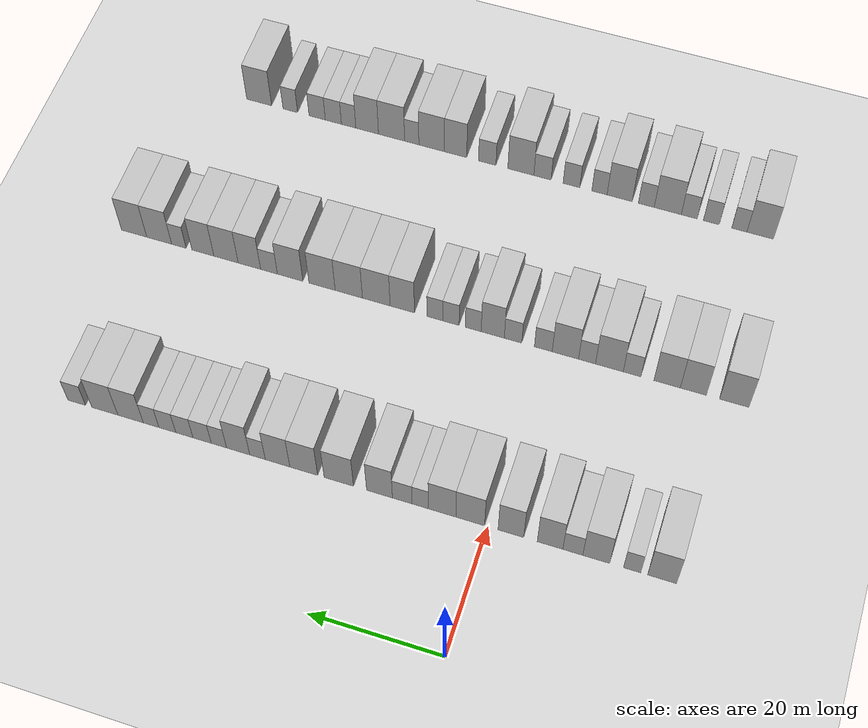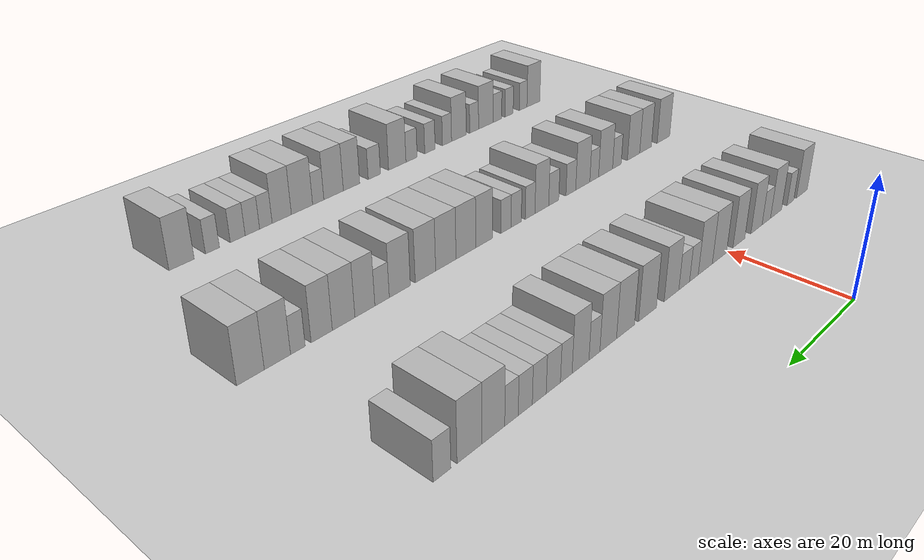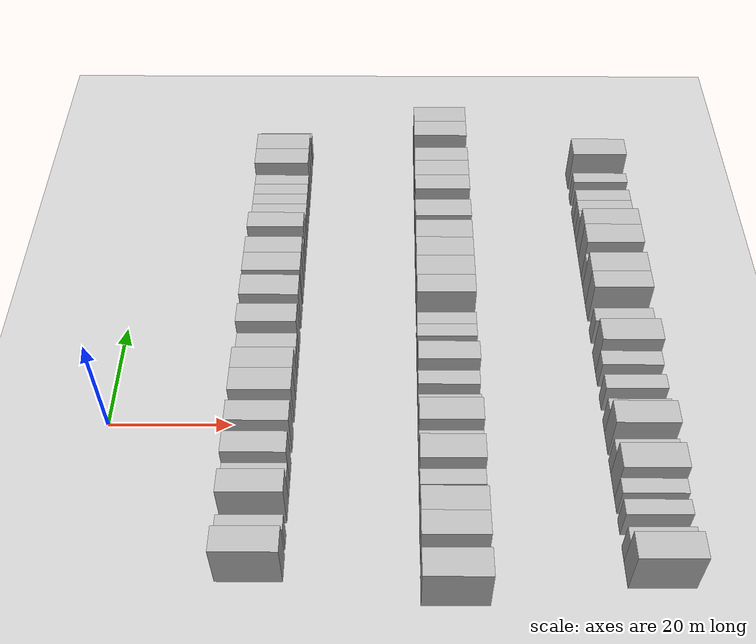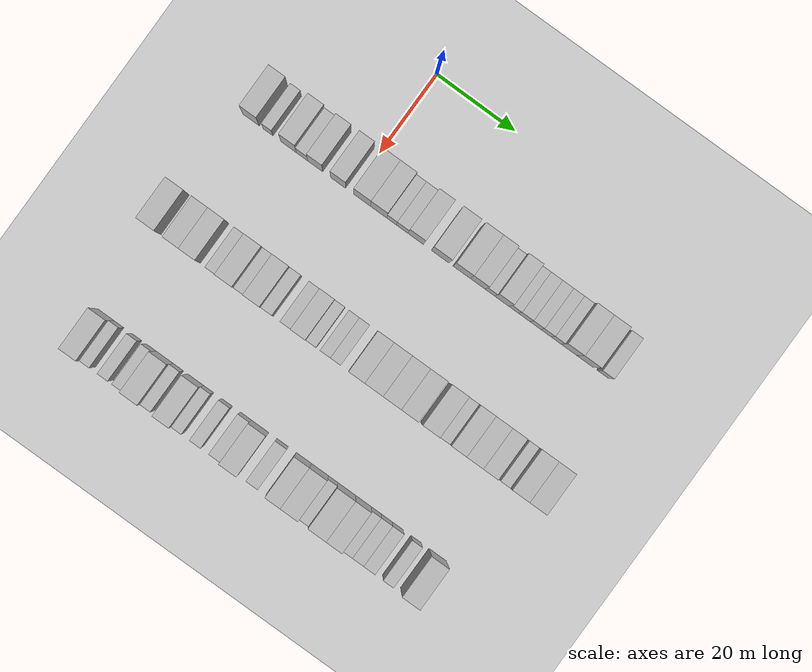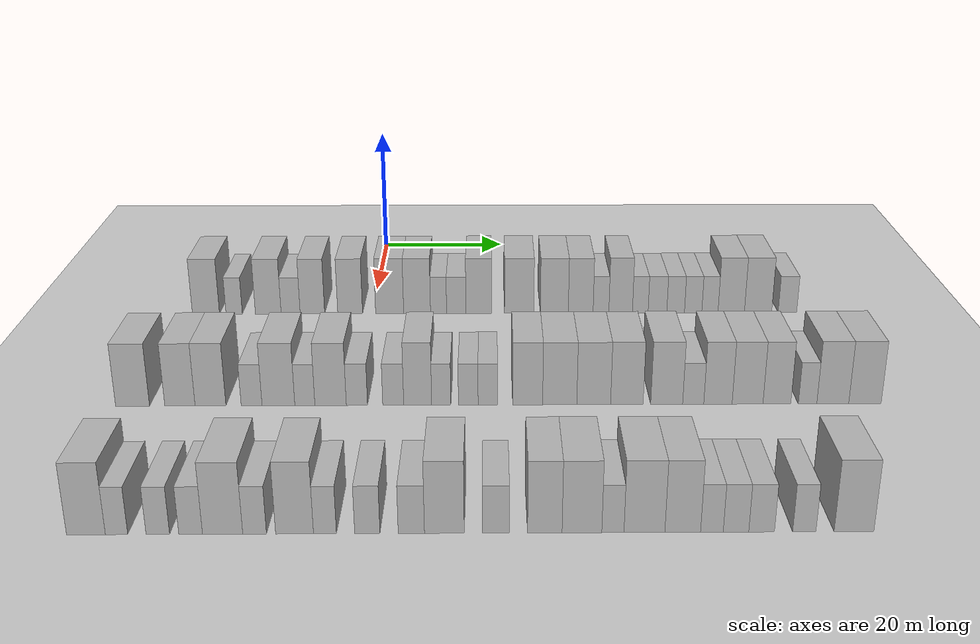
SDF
<sdf version="1.6">
 <world name="default">
  <include><name>ground_plane_1</name><uri>model://HANNAS_ground_plane</uri></include>
  <model name="building_98">
   <static>1</static>
   <pose>25.0000 -25.4486 0 0.000000 0.000000 0.000000</pose>
   <link name="link">
    <pose>0 0 4.50 0 0 0</pose>
    <collision name="collision"><geometry><box><size>10.0000 4.1456 9.0000</size></box></geometry></collision>
    <visual name="visual">
     <cast_shadows>0</cast_shadows>
     <geometry><box><size>10.0000 4.1456 9.0000</size></box></geometry>
     <material>
      <script>
       <uri>model://HANNAS_wall/materials/scripts</uri>
       <uri>model://HANNAS_wall/materials/textures</uri>
       <name>vrc/HANNAS_wall</name>
      </script>
     </material>
    </visual>
   </link>
  </model>
  <model name="building_99">
   <static>1</static>
   <pose>25.0000 -21.1285 0 0.000000 0.000000 0.000000</pose>
   <link name="link">
    <pose>0 0 3.00 0 0 0</pose>
    <collision name="collision"><geometry><box><size>10.0000 2.4947 6.0000</size></box></geometry></collision>
    <visual name="visual">
     <cast_shadows>0</cast_shadows>
     <geometry><box><size>10.0000 2.4947 6.0000</size></box></geometry>
     <material>
      <script>
       <uri>model://HANNAS_wall/materials/scripts</uri>
       <uri>model://HANNAS_wall/materials/textures</uri>
       <name>vrc/HANNAS_wall</name>
      </script>
     </material>
    </visual>
   </link>
  </model>
  <model name="building_100">
   <static>1</static>
   <pose>25.0000 -15.9112 0 0.000000 0.000000 0.000000</pose>
   <link name="link">
    <pose>0 0 4.50 0 0 0</pose>
    <collision name="collision"><geometry><box><size>10.0000 3.9399 9.0000</size></box></geometry></collision>
    <visual name="visual">
     <cast_shadows>0</cast_shadows>
     <geometry><box><size>10.0000 3.9399 9.0000</size></box></geometry>
     <material>
      <script>
       <uri>model://HANNAS_wall/materials/scripts</uri>
       <uri>model://HANNAS_wall/materials/textures</uri>
       <name>vrc/HANNAS_wall</name>
      </script>
     </material>
    </visual>
   </link>
  </model>
  <model name="building_101">
   <static>1</static>
   <pose>25.0000 -12.4846 0 0.000000 0.000000 0.000000</pose>
   <link name="link">
    <pose>0 0 3.00 0 0 0</pose>
    <collision name="collision"><geometry><box><size>10.0000 2.9132 6.0000</size></box></geometry></collision>
    <visual name="visual">
     <cast_shadows>0</cast_shadows>
     <geometry><box><size>10.0000 2.9132 6.0000</size></box></geometry>
     <material>
      <script>
       <uri>model://HANNAS_wall/materials/scripts</uri>
       <uri>model://HANNAS_wall/materials/textures</uri>
       <name>vrc/HANNAS_wall</name>
      </script>
     </material>
    </visual>
   </link>
  </model>
  <model name="building_102">
   <static>1</static>
   <pose>25.0000 -9.1486 0 0.000000 0.000000 0.000000</pose>
   <link name="link">
    <pose>0 0 4.50 0 0 0</pose>
    <collision name="collision"><geometry><box><size>10.0000 3.7589 9.0000</size></box></geometry></collision>
    <visual name="visual">
     <cast_shadows>0</cast_shadows>
     <geometry><box><size>10.0000 3.7589 9.0000</size></box></geometry>
     <material>
      <script>
       <uri>model://HANNAS_wall/materials/scripts</uri>
       <uri>model://HANNAS_wall/materials/textures</uri>
       <name>vrc/HANNAS_wall</name>
      </script>
     </material>
    </visual>
   </link>
  </model>
  <model name="building_103">
   <static>1</static>
   <pose>25.0000 -3.3682 0 0.000000 0.000000 0.000000</pose>
   <link name="link">
    <pose>0 0 4.50 0 0 0</pose>
    <collision name="collision"><geometry><box><size>10.0000 3.8019 9.0000</size></box></geometry></collision>
    <visual name="visual">
     <cast_shadows>0</cast_shadows>
     <geometry><box><size>10.0000 3.8019 9.0000</size></box></geometry>
     <material>
      <script>
       <uri>model://HANNAS_wall/materials/scripts</uri>
       <uri>model://HANNAS_wall/materials/textures</uri>
       <name>vrc/HANNAS_wall</name>
      </script>
     </material>
    </visual>
   </link>
  </model>
  <model name="building_104">
   <static>1</static>
   <pose>25.0000 2.6820 0 0.000000 0.000000 0.000000</pose>
   <link name="link">
    <pose>0 0 4.50 0 0 0</pose>
    <collision name="collision"><geometry><box><size>10.0000 4.2985 9.0000</size></box></geometry></collision>
    <visual name="visual">
     <cast_shadows>0</cast_shadows>
     <geometry><box><size>10.0000 4.2985 9.0000</size></box></geometry>
     <material>
      <script>
       <uri>model://HANNAS_wall/materials/scripts</uri>
       <uri>model://HANNAS_wall/materials/textures</uri>
       <name>vrc/HANNAS_wall</name>
      </script>
     </material>
    </visual>
   </link>
  </model>
  <model name="building_105">
   <static>1</static>
   <pose>25.0000 6.8907 0 0.000000 0.000000 0.000000</pose>
   <link name="link">
    <pose>0 0 4.50 0 0 0</pose>
    <collision name="collision"><geometry><box><size>10.0000 4.1188 9.0000</size></box></geometry></collision>
    <visual name="visual">
     <cast_shadows>0</cast_shadows>
     <geometry><box><size>10.0000 4.1188 9.0000</size></box></geometry>
     <material>
      <script>
       <uri>model://HANNAS_wall/materials/scripts</uri>
       <uri>model://HANNAS_wall/materials/textures</uri>
       <name>vrc/HANNAS_wall</name>
      </script>
     </material>
    </visual>
   </link>
  </model>
  <model name="building_106">
   <static>1</static>
   <pose>25.0000 10.1801 0 0.000000 0.000000 0.000000</pose>
   <link name="link">
    <pose>0 0 3.00 0 0 0</pose>
    <collision name="collision"><geometry><box><size>10.0000 2.4600 6.0000</size></box></geometry></collision>
    <visual name="visual">
     <cast_shadows>0</cast_shadows>
     <geometry><box><size>10.0000 2.4600 6.0000</size></box></geometry>
     <material>
      <script>
       <uri>model://HANNAS_wall/materials/scripts</uri>
       <uri>model://HANNAS_wall/materials/textures</uri>
       <name>vrc/HANNAS_wall</name>
      </script>
     </material>
    </visual>
   </link>
  </model>
  <model name="building_107">
   <static>1</static>
   <pose>25.0000 12.8931 0 0.000000 0.000000 0.000000</pose>
   <link name="link">
    <pose>0 0 3.00 0 0 0</pose>
    <collision name="collision"><geometry><box><size>10.0000 2.9661 6.0000</size></box></geometry></collision>
    <visual name="visual">
     <cast_shadows>0</cast_shadows>
     <geometry><box><size>10.0000 2.9661 6.0000</size></box></geometry>
     <material>
      <script>
       <uri>model://HANNAS_wall/materials/scripts</uri>
       <uri>model://HANNAS_wall/materials/textures</uri>
       <name>vrc/HANNAS_wall</name>
      </script>
     </material>
    </visual>
   </link>
  </model>
  <model name="building_108">
   <static>1</static>
   <pose>25.0000 16.3398 0 0.000000 0.000000 0.000000</pose>
   <link name="link">
    <pose>0 0 4.50 0 0 0</pose>
    <collision name="collision"><geometry><box><size>10.0000 3.9273 9.0000</size></box></geometry></collision>
    <visual name="visual">
     <cast_shadows>0</cast_shadows>
     <geometry><box><size>10.0000 3.9273 9.0000</size></box></geometry>
     <material>
      <script>
       <uri>model://HANNAS_wall/materials/scripts</uri>
       <uri>model://HANNAS_wall/materials/textures</uri>
       <name>vrc/HANNAS_wall</name>
      </script>
     </material>
    </visual>
   </link>
  </model>
  <model name="building_109">
   <static>1</static>
   <pose>25.0000 22.5527 0 0.000000 0.000000 0.000000</pose>
   <link name="link">
    <pose>0 0 4.50 0 0 0</pose>
    <collision name="collision"><geometry><box><size>10.0000 4.4985 9.0000</size></box></geometry></collision>
    <visual name="visual">
     <cast_shadows>0</cast_shadows>
     <geometry><box><size>10.0000 4.4985 9.0000</size></box></geometry>
     <material>
      <script>
       <uri>model://HANNAS_wall/materials/scripts</uri>
       <uri>model://HANNAS_wall/materials/textures</uri>
       <name>vrc/HANNAS_wall</name>
      </script>
     </material>
    </visual>
   </link>
  </model>
  <model name="building_110">
   <static>1</static>
   <pose>25.0000 27.9456 0 0.000000 0.000000 0.000000</pose>
   <link name="link">
    <pose>0 0 4.50 0 0 0</pose>
    <collision name="collision"><geometry><box><size>10.0000 4.2873 9.0000</size></box></geometry></collision>
    <visual name="visual">
     <cast_shadows>0</cast_shadows>
     <geometry><box><size>10.0000 4.2873 9.0000</size></box></geometry>
     <material>
      <script>
       <uri>model://HANNAS_wall/materials/scripts</uri>
       <uri>model://HANNAS_wall/materials/textures</uri>
       <name>vrc/HANNAS_wall</name>
      </script>
     </material>
    </visual>
   </link>
  </model>
  <model name="building_111">
   <static>1</static>
   <pose>25.0000 31.9948 0 0.000000 0.000000 0.000000</pose>
   <link name="link">
    <pose>0 0 4.50 0 0 0</pose>
    <collision name="collision"><geometry><box><size>10.0000 3.8110 9.0000</size></box></geometry></collision>
    <visual name="visual">
     <cast_shadows>0</cast_shadows>
     <geometry><box><size>10.0000 3.8110 9.0000</size></box></geometry>
     <material>
      <script>
       <uri>model://HANNAS_wall/materials/scripts</uri>
       <uri>model://HANNAS_wall/materials/textures</uri>
       <name>vrc/HANNAS_wall</name>
      </script>
     </material>
    </visual>
   </link>
  </model>
  <model name="building_112">
   <static>1</static>
   <pose>25.0000 35.1090 0 0.000000 0.000000 0.000000</pose>
   <link name="link">
    <pose>0 0 3.00 0 0 0</pose>
    <collision name="collision"><geometry><box><size>10.0000 2.4174 6.0000</size></box></geometry></collision>
    <visual name="visual">
     <cast_shadows>0</cast_shadows>
     <geometry><box><size>10.0000 2.4174 6.0000</size></box></geometry>
     <material>
      <script>
       <uri>model://HANNAS_wall/materials/scripts</uri>
       <uri>model://HANNAS_wall/materials/textures</uri>
       <name>vrc/HANNAS_wall</name>
      </script>
     </material>
    </visual>
   </link>
  </model>
  <model name="building_113">
   <static>1</static>
   <pose>25.0000 38.1297 0 0.000000 0.000000 0.000000</pose>
   <link name="link">
    <pose>0 0 4.50 0 0 0</pose>
    <collision name="collision"><geometry><box><size>10.0000 3.6241 9.0000</size></box></geometry></collision>
    <visual name="visual">
     <cast_shadows>0</cast_shadows>
     <geometry><box><size>10.0000 3.6241 9.0000</size></box></geometry>
     <material>
      <script>
       <uri>model://HANNAS_wall/materials/scripts</uri>
       <uri>model://HANNAS_wall/materials/textures</uri>
       <name>vrc/HANNAS_wall</name>
      </script>
     </material>
    </visual>
   </link>
  </model>
  <model name="building_114">
   <static>1</static>
   <pose>25.0000 41.1473 0 0.000000 0.000000 0.000000</pose>
   <link name="link">
    <pose>0 0 3.00 0 0 0</pose>
    <collision name="collision"><geometry><box><size>10.0000 2.4110 6.0000</size></box></geometry></collision>
    <visual name="visual">
     <cast_shadows>0</cast_shadows>
     <geometry><box><size>10.0000 2.4110 6.0000</size></box></geometry>
     <material>
      <script>
       <uri>model://HANNAS_wall/materials/scripts</uri>
       <uri>model://HANNAS_wall/materials/textures</uri>
       <name>vrc/HANNAS_wall</name>
      </script>
     </material>
    </visual>
   </link>
  </model>
  <model name="building_115">
   <static>1</static>
   <pose>25.0000 43.7891 0 0.000000 0.000000 0.000000</pose>
   <link name="link">
    <pose>0 0 3.00 0 0 0</pose>
    <collision name="collision"><geometry><box><size>10.0000 2.8726 6.0000</size></box></geometry></collision>
    <visual name="visual">
     <cast_shadows>0</cast_shadows>
     <geometry><box><size>10.0000 2.8726 6.0000</size></box></geometry>
     <material>
      <script>
       <uri>model://HANNAS_wall/materials/scripts</uri>
       <uri>model://HANNAS_wall/materials/textures</uri>
       <name>vrc/HANNAS_wall</name>
      </script>
     </material>
    </visual>
   </link>
  </model>
  <model name="building_116">
   <static>1</static>
   <pose>25.0000 46.5852 0 0.000000 0.000000 0.000000</pose>
   <link name="link">
    <pose>0 0 3.00 0 0 0</pose>
    <collision name="collision"><geometry><box><size>10.0000 2.7195 6.0000</size></box></geometry></collision>
    <visual name="visual">
     <cast_shadows>0</cast_shadows>
     <geometry><box><size>10.0000 2.7195 6.0000</size></box></geometry>
     <material>
      <script>
       <uri>model://HANNAS_wall/materials/scripts</uri>
       <uri>model://HANNAS_wall/materials/textures</uri>
       <name>vrc/HANNAS_wall</name>
      </script>
     </material>
    </visual>
   </link>
  </model>
  <model name="building_117">
   <static>1</static>
   <pose>25.0000 49.2761 0 0.000000 0.000000 0.000000</pose>
   <link name="link">
    <pose>0 0 3.00 0 0 0</pose>
    <collision name="collision"><geometry><box><size>10.0000 2.6624 6.0000</size></box></geometry></collision>
    <visual name="visual">
     <cast_shadows>0</cast_shadows>
     <geometry><box><size>10.0000 2.6624 6.0000</size></box></geometry>
     <material>
      <script>
       <uri>model://HANNAS_wall/materials/scripts</uri>
       <uri>model://HANNAS_wall/materials/textures</uri>
       <name>vrc/HANNAS_wall</name>
      </script>
     </material>
    </visual>
   </link>
  </model>
  <model name="building_118">
   <static>1</static>
   <pose>25.0000 51.8542 0 0.000000 0.000000 0.000000</pose>
   <link name="link">
    <pose>0 0 3.00 0 0 0</pose>
    <collision name="collision"><geometry><box><size>10.0000 2.4939 6.0000</size></box></geometry></collision>
    <visual name="visual">
     <cast_shadows>0</cast_shadows>
     <geometry><box><size>10.0000 2.4939 6.0000</size></box></geometry>
     <material>
      <script>
       <uri>model://HANNAS_wall/materials/scripts</uri>
       <uri>model://HANNAS_wall/materials/textures</uri>
       <name>vrc/HANNAS_wall</name>
      </script>
     </material>
    </visual>
   </link>
  </model>
  <model name="building_119">
   <static>1</static>
   <pose>25.0000 55.1334 0 0.000000 0.000000 0.000000</pose>
   <link name="link">
    <pose>0 0 4.50 0 0 0</pose>
    <collision name="collision"><geometry><box><size>10.0000 4.0644 9.0000</size></box></geometry></collision>
    <visual name="visual">
     <cast_shadows>0</cast_shadows>
     <geometry><box><size>10.0000 4.0644 9.0000</size></box></geometry>
     <material>
      <script>
       <uri>model://HANNAS_wall/materials/scripts</uri>
       <uri>model://HANNAS_wall/materials/textures</uri>
       <name>vrc/HANNAS_wall</name>
      </script>
     </material>
    </visual>
   </link>
  </model>
  <model name="building_120">
   <static>1</static>
   <pose>25.0000 59.2651 0 0.000000 0.000000 0.000000</pose>
   <link name="link">
    <pose>0 0 4.50 0 0 0</pose>
    <collision name="collision"><geometry><box><size>10.0000 4.1990 9.0000</size></box></geometry></collision>
    <visual name="visual">
     <cast_shadows>0</cast_shadows>
     <geometry><box><size>10.0000 4.1990 9.0000</size></box></geometry>
     <material>
      <script>
       <uri>model://HANNAS_wall/materials/scripts</uri>
       <uri>model://HANNAS_wall/materials/textures</uri>
       <name>vrc/HANNAS_wall</name>
      </script>
     </material>
    </visual>
   </link>
  </model>
  <model name="building_121">
   <static>1</static>
   <pose>25.0000 63.7911 0 0.000000 0.000000 0.000000</pose>
   <link name="link">
    <pose>0 0 3.00 0 0 0</pose>
    <collision name="collision"><geometry><box><size>10.0000 2.8531 6.0000</size></box></geometry></collision>
    <visual name="visual">
     <cast_shadows>0</cast_shadows>
     <geometry><box><size>10.0000 2.8531 6.0000</size></box></geometry>
     <material>
      <script>
       <uri>model://HANNAS_wall/materials/scripts</uri>
       <uri>model://HANNAS_wall/materials/textures</uri>
       <name>vrc/HANNAS_wall</name>
      </script>
     </material>
    </visual>
   </link>
  </model>
  <model name="building_329">
   <static>1</static>
   <pose>55.0000 -28.8883 0 0.000000 0.000000 0.000000</pose>
   <link name="link">
    <pose>0 0 4.50 0 0 0</pose>
    <collision name="collision"><geometry><box><size>10.0000 4.4527 9.0000</size></box></geometry></collision>
    <visual name="visual">
     <cast_shadows>0</cast_shadows>
     <geometry><box><size>10.0000 4.4527 9.0000</size></box></geometry>
     <material>
      <script>
       <uri>model://HANNAS_wall/materials/scripts</uri>
       <uri>model://HANNAS_wall/materials/textures</uri>
       <name>vrc/HANNAS_wall</name>
      </script>
     </material>
    </visual>
   </link>
  </model>
  <model name="building_330">
   <static>1</static>
   <pose>55.0000 -22.6788 0 0.000000 0.000000 0.000000</pose>
   <link name="link">
    <pose>0 0 4.50 0 0 0</pose>
    <collision name="collision"><geometry><box><size>10.0000 3.9663 9.0000</size></box></geometry></collision>
    <visual name="visual">
     <cast_shadows>0</cast_shadows>
     <geometry><box><size>10.0000 3.9663 9.0000</size></box></geometry>
     <material>
      <script>
       <uri>model://HANNAS_wall/materials/scripts</uri>
       <uri>model://HANNAS_wall/materials/textures</uri>
       <name>vrc/HANNAS_wall</name>
      </script>
     </material>
    </visual>
   </link>
  </model>
  <model name="building_331">
   <static>1</static>
   <pose>55.0000 -18.6706 0 0.000000 0.000000 0.000000</pose>
   <link name="link">
    <pose>0 0 4.50 0 0 0</pose>
    <collision name="collision"><geometry><box><size>10.0000 4.0502 9.0000</size></box></geometry></collision>
    <visual name="visual">
     <cast_shadows>0</cast_shadows>
     <geometry><box><size>10.0000 4.0502 9.0000</size></box></geometry>
     <material>
      <script>
       <uri>model://HANNAS_wall/materials/scripts</uri>
       <uri>model://HANNAS_wall/materials/textures</uri>
       <name>vrc/HANNAS_wall</name>
      </script>
     </material>
    </visual>
   </link>
  </model>
  <model name="building_332">
   <static>1</static>
   <pose>55.0000 -13.2770 0 0.000000 0.000000 0.000000</pose>
   <link name="link">
    <pose>0 0 3.00 0 0 0</pose>
    <collision name="collision"><geometry><box><size>10.0000 2.7370 6.0000</size></box></geometry></collision>
    <visual name="visual">
     <cast_shadows>0</cast_shadows>
     <geometry><box><size>10.0000 2.7370 6.0000</size></box></geometry>
     <material>
      <script>
       <uri>model://HANNAS_wall/materials/scripts</uri>
       <uri>model://HANNAS_wall/materials/textures</uri>
       <name>vrc/HANNAS_wall</name>
      </script>
     </material>
    </visual>
   </link>
  </model>
  <model name="building_333">
   <static>1</static>
   <pose>55.0000 -9.7554 0 0.000000 0.000000 0.000000</pose>
   <link name="link">
    <pose>0 0 4.50 0 0 0</pose>
    <collision name="collision"><geometry><box><size>10.0000 4.3061 9.0000</size></box></geometry></collision>
    <visual name="visual">
     <cast_shadows>0</cast_shadows>
     <geometry><box><size>10.0000 4.3061 9.0000</size></box></geometry>
     <material>
      <script>
       <uri>model://HANNAS_wall/materials/scripts</uri>
       <uri>model://HANNAS_wall/materials/textures</uri>
       <name>vrc/HANNAS_wall</name>
      </script>
     </material>
    </visual>
   </link>
  </model>
  <model name="building_334">
   <static>1</static>
   <pose>55.0000 -6.2853 0 0.000000 0.000000 0.000000</pose>
   <link name="link">
    <pose>0 0 3.00 0 0 0</pose>
    <collision name="collision"><geometry><box><size>10.0000 2.6341 6.0000</size></box></geometry></collision>
    <visual name="visual">
     <cast_shadows>0</cast_shadows>
     <geometry><box><size>10.0000 2.6341 6.0000</size></box></geometry>
     <material>
      <script>
       <uri>model://HANNAS_wall/materials/scripts</uri>
       <uri>model://HANNAS_wall/materials/textures</uri>
       <name>vrc/HANNAS_wall</name>
      </script>
     </material>
    </visual>
   </link>
  </model>
  <model name="building_335">
   <static>1</static>
   <pose>55.0000 -2.9037 0 0.000000 0.000000 0.000000</pose>
   <link name="link">
    <pose>0 0 4.50 0 0 0</pose>
    <collision name="collision"><geometry><box><size>10.0000 4.1291 9.0000</size></box></geometry></collision>
    <visual name="visual">
     <cast_shadows>0</cast_shadows>
     <geometry><box><size>10.0000 4.1291 9.0000</size></box></geometry>
     <material>
      <script>
       <uri>model://HANNAS_wall/materials/scripts</uri>
       <uri>model://HANNAS_wall/materials/textures</uri>
       <name>vrc/HANNAS_wall</name>
      </script>
     </material>
    </visual>
   </link>
  </model>
  <model name="building_336">
   <static>1</static>
   <pose>55.0000 0.5549 0 0.000000 0.000000 0.000000</pose>
   <link name="link">
    <pose>0 0 3.00 0 0 0</pose>
    <collision name="collision"><geometry><box><size>10.0000 2.7881 6.0000</size></box></geometry></collision>
    <visual name="visual">
     <cast_shadows>0</cast_shadows>
     <geometry><box><size>10.0000 2.7881 6.0000</size></box></geometry>
     <material>
      <script>
       <uri>model://HANNAS_wall/materials/scripts</uri>
       <uri>model://HANNAS_wall/materials/textures</uri>
       <name>vrc/HANNAS_wall</name>
      </script>
     </material>
    </visual>
   </link>
  </model>
  <model name="building_337">
   <static>1</static>
   <pose>55.0000 5.3256 0 0.000000 0.000000 0.000000</pose>
   <link name="link">
    <pose>0 0 3.00 0 0 0</pose>
    <collision name="collision"><geometry><box><size>10.0000 2.7534 6.0000</size></box></geometry></collision>
    <visual name="visual">
     <cast_shadows>0</cast_shadows>
     <geometry><box><size>10.0000 2.7534 6.0000</size></box></geometry>
     <material>
      <script>
       <uri>model://HANNAS_wall/materials/scripts</uri>
       <uri>model://HANNAS_wall/materials/textures</uri>
       <name>vrc/HANNAS_wall</name>
      </script>
     </material>
    </visual>
   </link>
  </model>
  <model name="building_338">
   <static>1</static>
   <pose>55.0000 8.5414 0 0.000000 0.000000 0.000000</pose>
   <link name="link">
    <pose>0 0 4.50 0 0 0</pose>
    <collision name="collision"><geometry><box><size>10.0000 3.6780 9.0000</size></box></geometry></collision>
    <visual name="visual">
     <cast_shadows>0</cast_shadows>
     <geometry><box><size>10.0000 3.6780 9.0000</size></box></geometry>
     <material>
      <script>
       <uri>model://HANNAS_wall/materials/scripts</uri>
       <uri>model://HANNAS_wall/materials/textures</uri>
       <name>vrc/HANNAS_wall</name>
      </script>
     </material>
    </visual>
   </link>
  </model>
  <model name="building_339">
   <static>1</static>
   <pose>55.0000 11.6383 0 0.000000 0.000000 0.000000</pose>
   <link name="link">
    <pose>0 0 3.00 0 0 0</pose>
    <collision name="collision"><geometry><box><size>10.0000 2.5159 6.0000</size></box></geometry></collision>
    <visual name="visual">
     <cast_shadows>0</cast_shadows>
     <geometry><box><size>10.0000 2.5159 6.0000</size></box></geometry>
     <material>
      <script>
       <uri>model://HANNAS_wall/materials/scripts</uri>
       <uri>model://HANNAS_wall/materials/textures</uri>
       <name>vrc/HANNAS_wall</name>
      </script>
     </material>
    </visual>
   </link>
  </model>
  <model name="building_340">
   <static>1</static>
   <pose>55.0000 15.1910 0 0.000000 0.000000 0.000000</pose>
   <link name="link">
    <pose>0 0 3.00 0 0 0</pose>
    <collision name="collision"><geometry><box><size>10.0000 2.5895 6.0000</size></box></geometry></collision>
    <visual name="visual">
     <cast_shadows>0</cast_shadows>
     <geometry><box><size>10.0000 2.5895 6.0000</size></box></geometry>
     <material>
      <script>
       <uri>model://HANNAS_wall/materials/scripts</uri>
       <uri>model://HANNAS_wall/materials/textures</uri>
       <name>vrc/HANNAS_wall</name>
      </script>
     </material>
    </visual>
   </link>
  </model>
  <model name="building_341">
   <static>1</static>
   <pose>55.0000 17.7638 0 0.000000 0.000000 0.000000</pose>
   <link name="link">
    <pose>0 0 3.00 0 0 0</pose>
    <collision name="collision"><geometry><box><size>10.0000 2.5561 6.0000</size></box></geometry></collision>
    <visual name="visual">
     <cast_shadows>0</cast_shadows>
     <geometry><box><size>10.0000 2.5561 6.0000</size></box></geometry>
     <material>
      <script>
       <uri>model://HANNAS_wall/materials/scripts</uri>
       <uri>model://HANNAS_wall/materials/textures</uri>
       <name>vrc/HANNAS_wall</name>
      </script>
     </material>
    </visual>
   </link>
  </model>
  <model name="building_342">
   <static>1</static>
   <pose>55.0000 23.0082 0 0.000000 0.000000 0.000000</pose>
   <link name="link">
    <pose>0 0 4.50 0 0 0</pose>
    <collision name="collision"><geometry><box><size>10.0000 3.9326 9.0000</size></box></geometry></collision>
    <visual name="visual">
     <cast_shadows>0</cast_shadows>
     <geometry><box><size>10.0000 3.9326 9.0000</size></box></geometry>
     <material>
      <script>
       <uri>model://HANNAS_wall/materials/scripts</uri>
       <uri>model://HANNAS_wall/materials/textures</uri>
       <name>vrc/HANNAS_wall</name>
      </script>
     </material>
    </visual>
   </link>
  </model>
  <model name="building_343">
   <static>1</static>
   <pose>55.0000 27.2236 0 0.000000 0.000000 0.000000</pose>
   <link name="link">
    <pose>0 0 4.50 0 0 0</pose>
    <collision name="collision"><geometry><box><size>10.0000 4.4982 9.0000</size></box></geometry></collision>
    <visual name="visual">
     <cast_shadows>0</cast_shadows>
     <geometry><box><size>10.0000 4.4982 9.0000</size></box></geometry>
     <material>
      <script>
       <uri>model://HANNAS_wall/materials/scripts</uri>
       <uri>model://HANNAS_wall/materials/textures</uri>
       <name>vrc/HANNAS_wall</name>
      </script>
     </material>
    </visual>
   </link>
  </model>
  <model name="building_344">
   <static>1</static>
   <pose>55.0000 31.6979 0 0.000000 0.000000 0.000000</pose>
   <link name="link">
    <pose>0 0 4.50 0 0 0</pose>
    <collision name="collision"><geometry><box><size>10.0000 4.4505 9.0000</size></box></geometry></collision>
    <visual name="visual">
     <cast_shadows>0</cast_shadows>
     <geometry><box><size>10.0000 4.4505 9.0000</size></box></geometry>
     <material>
      <script>
       <uri>model://HANNAS_wall/materials/scripts</uri>
       <uri>model://HANNAS_wall/materials/textures</uri>
       <name>vrc/HANNAS_wall</name>
      </script>
     </material>
    </visual>
   </link>
  </model>
  <model name="building_345">
   <static>1</static>
   <pose>55.0000 36.0686 0 0.000000 0.000000 0.000000</pose>
   <link name="link">
    <pose>0 0 4.50 0 0 0</pose>
    <collision name="collision"><geometry><box><size>10.0000 4.2909 9.0000</size></box></geometry></collision>
    <visual name="visual">
     <cast_shadows>0</cast_shadows>
     <geometry><box><size>10.0000 4.2909 9.0000</size></box></geometry>
     <material>
      <script>
       <uri>model://HANNAS_wall/materials/scripts</uri>
       <uri>model://HANNAS_wall/materials/textures</uri>
       <name>vrc/HANNAS_wall</name>
      </script>
     </material>
    </visual>
   </link>
  </model>
  <model name="building_346">
   <static>1</static>
   <pose>55.0000 41.3172 0 0.000000 0.000000 0.000000</pose>
   <link name="link">
    <pose>0 0 4.50 0 0 0</pose>
    <collision name="collision"><geometry><box><size>10.0000 4.2062 9.0000</size></box></geometry></collision>
    <visual name="visual">
     <cast_shadows>0</cast_shadows>
     <geometry><box><size>10.0000 4.2062 9.0000</size></box></geometry>
     <material>
      <script>
       <uri>model://HANNAS_wall/materials/scripts</uri>
       <uri>model://HANNAS_wall/materials/textures</uri>
       <name>vrc/HANNAS_wall</name>
      </script>
     </material>
    </visual>
   </link>
  </model>
  <model name="building_347">
   <static>1</static>
   <pose>55.0000 44.8144 0 0.000000 0.000000 0.000000</pose>
   <link name="link">
    <pose>0 0 3.00 0 0 0</pose>
    <collision name="collision"><geometry><box><size>10.0000 2.7882 6.0000</size></box></geometry></collision>
    <visual name="visual">
     <cast_shadows>0</cast_shadows>
     <geometry><box><size>10.0000 2.7882 6.0000</size></box></geometry>
     <material>
      <script>
       <uri>model://HANNAS_wall/materials/scripts</uri>
       <uri>model://HANNAS_wall/materials/textures</uri>
       <name>vrc/HANNAS_wall</name>
      </script>
     </material>
    </visual>
   </link>
  </model>
  <model name="building_348">
   <static>1</static>
   <pose>55.0000 48.0752 0 0.000000 0.000000 0.000000</pose>
   <link name="link">
    <pose>0 0 4.50 0 0 0</pose>
    <collision name="collision"><geometry><box><size>10.0000 3.7334 9.0000</size></box></geometry></collision>
    <visual name="visual">
     <cast_shadows>0</cast_shadows>
     <geometry><box><size>10.0000 3.7334 9.0000</size></box></geometry>
     <material>
      <script>
       <uri>model://HANNAS_wall/materials/scripts</uri>
       <uri>model://HANNAS_wall/materials/textures</uri>
       <name>vrc/HANNAS_wall</name>
      </script>
     </material>
    </visual>
   </link>
  </model>
  <model name="building_349">
   <static>1</static>
   <pose>55.0000 51.9784 0 0.000000 0.000000 0.000000</pose>
   <link name="link">
    <pose>0 0 4.50 0 0 0</pose>
    <collision name="collision"><geometry><box><size>10.0000 4.0731 9.0000</size></box></geometry></collision>
    <visual name="visual">
     <cast_shadows>0</cast_shadows>
     <geometry><box><size>10.0000 4.0731 9.0000</size></box></geometry>
     <material>
      <script>
       <uri>model://HANNAS_wall/materials/scripts</uri>
       <uri>model://HANNAS_wall/materials/textures</uri>
       <name>vrc/HANNAS_wall</name>
      </script>
     </material>
    </visual>
   </link>
  </model>
  <model name="building_350">
   <static>1</static>
   <pose>55.0000 55.8538 0 0.000000 0.000000 0.000000</pose>
   <link name="link">
    <pose>0 0 4.50 0 0 0</pose>
    <collision name="collision"><geometry><box><size>10.0000 3.6778 9.0000</size></box></geometry></collision>
    <visual name="visual">
     <cast_shadows>0</cast_shadows>
     <geometry><box><size>10.0000 3.6778 9.0000</size></box></geometry>
     <material>
      <script>
       <uri>model://HANNAS_wall/materials/scripts</uri>
       <uri>model://HANNAS_wall/materials/textures</uri>
       <name>vrc/HANNAS_wall</name>
      </script>
     </material>
    </visual>
   </link>
  </model>
  <model name="building_351">
   <static>1</static>
   <pose>55.0000 59.9099 0 0.000000 0.000000 0.000000</pose>
   <link name="link">
    <pose>0 0 3.00 0 0 0</pose>
    <collision name="collision"><geometry><box><size>10.0000 2.4343 6.0000</size></box></geometry></collision>
    <visual name="visual">
     <cast_shadows>0</cast_shadows>
     <geometry><box><size>10.0000 2.4343 6.0000</size></box></geometry>
     <material>
      <script>
       <uri>model://HANNAS_wall/materials/scripts</uri>
       <uri>model://HANNAS_wall/materials/textures</uri>
       <name>vrc/HANNAS_wall</name>
      </script>
     </material>
    </visual>
   </link>
  </model>
  <model name="building_352">
   <static>1</static>
   <pose>55.0000 63.2343 0 0.000000 0.000000 0.000000</pose>
   <link name="link">
    <pose>0 0 4.50 0 0 0</pose>
    <collision name="collision"><geometry><box><size>10.0000 4.2145 9.0000</size></box></geometry></collision>
    <visual name="visual">
     <cast_shadows>0</cast_shadows>
     <geometry><box><size>10.0000 4.2145 9.0000</size></box></geometry>
     <material>
      <script>
       <uri>model://HANNAS_wall/materials/scripts</uri>
       <uri>model://HANNAS_wall/materials/textures</uri>
       <name>vrc/HANNAS_wall</name>
      </script>
     </material>
    </visual>
   </link>
  </model>
  <model name="building_353">
   <static>1</static>
   <pose>55.0000 67.4836 0 0.000000 0.000000 0.000000</pose>
   <link name="link">
    <pose>0 0 4.50 0 0 0</pose>
    <collision name="collision"><geometry><box><size>10.0000 4.2840 9.0000</size></box></geometry></collision>
    <visual name="visual">
     <cast_shadows>0</cast_shadows>
     <geometry><box><size>10.0000 4.2840 9.0000</size></box></geometry>
     <material>
      <script>
       <uri>model://HANNAS_wall/materials/scripts</uri>
       <uri>model://HANNAS_wall/materials/textures</uri>
       <name>vrc/HANNAS_wall</name>
      </script>
     </material>
    </visual>
   </link>
  </model>
  <model name="building_557">
   <static>1</static>
   <pose>85.0000 -26.2025 0 0.000000 0.000000 0.000000</pose>
   <link name="link">
    <pose>0 0 4.50 0 0 0</pose>
    <collision name="collision"><geometry><box><size>10.0000 4.2464 9.0000</size></box></geometry></collision>
    <visual name="visual">
     <cast_shadows>0</cast_shadows>
     <geometry><box><size>10.0000 4.2464 9.0000</size></box></geometry>
     <material>
      <script>
       <uri>model://HANNAS_wall/materials/scripts</uri>
       <uri>model://HANNAS_wall/materials/textures</uri>
       <name>vrc/HANNAS_wall</name>
      </script>
     </material>
    </visual>
   </link>
  </model>
  <model name="building_558">
   <static>1</static>
   <pose>85.0000 -22.8559 0 0.000000 0.000000 0.000000</pose>
   <link name="link">
    <pose>0 0 3.00 0 0 0</pose>
    <collision name="collision"><geometry><box><size>10.0000 2.4468 6.0000</size></box></geometry></collision>
    <visual name="visual">
     <cast_shadows>0</cast_shadows>
     <geometry><box><size>10.0000 2.4468 6.0000</size></box></geometry>
     <material>
      <script>
       <uri>model://HANNAS_wall/materials/scripts</uri>
       <uri>model://HANNAS_wall/materials/textures</uri>
       <name>vrc/HANNAS_wall</name>
      </script>
     </material>
    </visual>
   </link>
  </model>
  <model name="building_559">
   <static>1</static>
   <pose>85.0000 -18.3431 0 0.000000 0.000000 0.000000</pose>
   <link name="link">
    <pose>0 0 3.00 0 0 0</pose>
    <collision name="collision"><geometry><box><size>10.0000 2.5789 6.0000</size></box></geometry></collision>
    <visual name="visual">
     <cast_shadows>0</cast_shadows>
     <geometry><box><size>10.0000 2.5789 6.0000</size></box></geometry>
     <material>
      <script>
       <uri>model://HANNAS_wall/materials/scripts</uri>
       <uri>model://HANNAS_wall/materials/textures</uri>
       <name>vrc/HANNAS_wall</name>
      </script>
     </material>
    </visual>
   </link>
  </model>
  <model name="building_560">
   <static>1</static>
   <pose>85.0000 -14.7578 0 0.000000 0.000000 0.000000</pose>
   <link name="link">
    <pose>0 0 3.00 0 0 0</pose>
    <collision name="collision"><geometry><box><size>10.0000 2.5915 6.0000</size></box></geometry></collision>
    <visual name="visual">
     <cast_shadows>0</cast_shadows>
     <geometry><box><size>10.0000 2.5915 6.0000</size></box></geometry>
     <material>
      <script>
       <uri>model://HANNAS_wall/materials/scripts</uri>
       <uri>model://HANNAS_wall/materials/textures</uri>
       <name>vrc/HANNAS_wall</name>
      </script>
     </material>
    </visual>
   </link>
  </model>
  <model name="building_561">
   <static>1</static>
   <pose>85.0000 -11.2605 0 0.000000 0.000000 0.000000</pose>
   <link name="link">
    <pose>0 0 4.50 0 0 0</pose>
    <collision name="collision"><geometry><box><size>10.0000 4.4032 9.0000</size></box></geometry></collision>
    <visual name="visual">
     <cast_shadows>0</cast_shadows>
     <geometry><box><size>10.0000 4.4032 9.0000</size></box></geometry>
     <material>
      <script>
       <uri>model://HANNAS_wall/materials/scripts</uri>
       <uri>model://HANNAS_wall/materials/textures</uri>
       <name>vrc/HANNAS_wall</name>
      </script>
     </material>
    </visual>
   </link>
  </model>
  <model name="building_562">
   <static>1</static>
   <pose>85.0000 -7.7603 0 0.000000 0.000000 0.000000</pose>
   <link name="link">
    <pose>0 0 3.00 0 0 0</pose>
    <collision name="collision"><geometry><box><size>10.0000 2.5971 6.0000</size></box></geometry></collision>
    <visual name="visual">
     <cast_shadows>0</cast_shadows>
     <geometry><box><size>10.0000 2.5971 6.0000</size></box></geometry>
     <material>
      <script>
       <uri>model://HANNAS_wall/materials/scripts</uri>
       <uri>model://HANNAS_wall/materials/textures</uri>
       <name>vrc/HANNAS_wall</name>
      </script>
     </material>
    </visual>
   </link>
  </model>
  <model name="building_563">
   <static>1</static>
   <pose>85.0000 -3.3902 0 0.000000 0.000000 0.000000</pose>
   <link name="link">
    <pose>0 0 4.50 0 0 0</pose>
    <collision name="collision"><geometry><box><size>10.0000 4.1432 9.0000</size></box></geometry></collision>
    <visual name="visual">
     <cast_shadows>0</cast_shadows>
     <geometry><box><size>10.0000 4.1432 9.0000</size></box></geometry>
     <material>
      <script>
       <uri>model://HANNAS_wall/materials/scripts</uri>
       <uri>model://HANNAS_wall/materials/textures</uri>
       <name>vrc/HANNAS_wall</name>
      </script>
     </material>
    </visual>
   </link>
  </model>
  <model name="building_564">
   <static>1</static>
   <pose>85.0000 -0.0617 0 0.000000 0.000000 0.000000</pose>
   <link name="link">
    <pose>0 0 3.00 0 0 0</pose>
    <collision name="collision"><geometry><box><size>10.0000 2.5137 6.0000</size></box></geometry></collision>
    <visual name="visual">
     <cast_shadows>0</cast_shadows>
     <geometry><box><size>10.0000 2.5137 6.0000</size></box></geometry>
     <material>
      <script>
       <uri>model://HANNAS_wall/materials/scripts</uri>
       <uri>model://HANNAS_wall/materials/textures</uri>
       <name>vrc/HANNAS_wall</name>
      </script>
     </material>
    </visual>
   </link>
  </model>
  <model name="building_565">
   <static>1</static>
   <pose>85.0000 4.5789 0 0.000000 0.000000 0.000000</pose>
   <link name="link">
    <pose>0 0 3.00 0 0 0</pose>
    <collision name="collision"><geometry><box><size>10.0000 2.7676 6.0000</size></box></geometry></collision>
    <visual name="visual">
     <cast_shadows>0</cast_shadows>
     <geometry><box><size>10.0000 2.7676 6.0000</size></box></geometry>
     <material>
      <script>
       <uri>model://HANNAS_wall/materials/scripts</uri>
       <uri>model://HANNAS_wall/materials/textures</uri>
       <name>vrc/HANNAS_wall</name>
      </script>
     </material>
    </visual>
   </link>
  </model>
  <model name="building_566">
   <static>1</static>
   <pose>85.0000 9.4028 0 0.000000 0.000000 0.000000</pose>
   <link name="link">
    <pose>0 0 3.00 0 0 0</pose>
    <collision name="collision"><geometry><box><size>10.0000 2.8801 6.0000</size></box></geometry></collision>
    <visual name="visual">
     <cast_shadows>0</cast_shadows>
     <geometry><box><size>10.0000 2.8801 6.0000</size></box></geometry>
     <material>
      <script>
       <uri>model://HANNAS_wall/materials/scripts</uri>
       <uri>model://HANNAS_wall/materials/textures</uri>
       <name>vrc/HANNAS_wall</name>
      </script>
     </material>
    </visual>
   </link>
  </model>
  <model name="building_567">
   <static>1</static>
   <pose>85.0000 13.0254 0 0.000000 0.000000 0.000000</pose>
   <link name="link">
    <pose>0 0 4.50 0 0 0</pose>
    <collision name="collision"><geometry><box><size>10.0000 4.3651 9.0000</size></box></geometry></collision>
    <visual name="visual">
     <cast_shadows>0</cast_shadows>
     <geometry><box><size>10.0000 4.3651 9.0000</size></box></geometry>
     <material>
      <script>
       <uri>model://HANNAS_wall/materials/scripts</uri>
       <uri>model://HANNAS_wall/materials/textures</uri>
       <name>vrc/HANNAS_wall</name>
      </script>
     </material>
    </visual>
   </link>
  </model>
  <model name="building_568">
   <static>1</static>
   <pose>85.0000 18.6779 0 0.000000 0.000000 0.000000</pose>
   <link name="link">
    <pose>0 0 3.00 0 0 0</pose>
    <collision name="collision"><geometry><box><size>10.0000 2.9400 6.0000</size></box></geometry></collision>
    <visual name="visual">
     <cast_shadows>0</cast_shadows>
     <geometry><box><size>10.0000 2.9400 6.0000</size></box></geometry>
     <material>
      <script>
       <uri>model://HANNAS_wall/materials/scripts</uri>
       <uri>model://HANNAS_wall/materials/textures</uri>
       <name>vrc/HANNAS_wall</name>
      </script>
     </material>
    </visual>
   </link>
  </model>
  <model name="building_569">
   <static>1</static>
   <pose>85.0000 24.0415 0 0.000000 0.000000 0.000000</pose>
   <link name="link">
    <pose>0 0 4.50 0 0 0</pose>
    <collision name="collision"><geometry><box><size>10.0000 3.7872 9.0000</size></box></geometry></collision>
    <visual name="visual">
     <cast_shadows>0</cast_shadows>
     <geometry><box><size>10.0000 3.7872 9.0000</size></box></geometry>
     <material>
      <script>
       <uri>model://HANNAS_wall/materials/scripts</uri>
       <uri>model://HANNAS_wall/materials/textures</uri>
       <name>vrc/HANNAS_wall</name>
      </script>
     </material>
    </visual>
   </link>
  </model>
  <model name="building_570">
   <static>1</static>
   <pose>85.0000 28.1155 0 0.000000 0.000000 0.000000</pose>
   <link name="link">
    <pose>0 0 4.50 0 0 0</pose>
    <collision name="collision"><geometry><box><size>10.0000 4.3606 9.0000</size></box></geometry></collision>
    <visual name="visual">
     <cast_shadows>0</cast_shadows>
     <geometry><box><size>10.0000 4.3606 9.0000</size></box></geometry>
     <material>
      <script>
       <uri>model://HANNAS_wall/materials/scripts</uri>
       <uri>model://HANNAS_wall/materials/textures</uri>
       <name>vrc/HANNAS_wall</name>
      </script>
     </material>
    </visual>
   </link>
  </model>
  <model name="building_571">
   <static>1</static>
   <pose>85.0000 31.5137 0 0.000000 0.000000 0.000000</pose>
   <link name="link">
    <pose>0 0 3.00 0 0 0</pose>
    <collision name="collision"><geometry><box><size>10.0000 2.4359 6.0000</size></box></geometry></collision>
    <visual name="visual">
     <cast_shadows>0</cast_shadows>
     <geometry><box><size>10.0000 2.4359 6.0000</size></box></geometry>
     <material>
      <script>
       <uri>model://HANNAS_wall/materials/scripts</uri>
       <uri>model://HANNAS_wall/materials/textures</uri>
       <name>vrc/HANNAS_wall</name>
      </script>
     </material>
    </visual>
   </link>
  </model>
  <model name="building_572">
   <static>1</static>
   <pose>85.0000 34.9789 0 0.000000 0.000000 0.000000</pose>
   <link name="link">
    <pose>0 0 4.50 0 0 0</pose>
    <collision name="collision"><geometry><box><size>10.0000 4.4945 9.0000</size></box></geometry></collision>
    <visual name="visual">
     <cast_shadows>0</cast_shadows>
     <geometry><box><size>10.0000 4.4945 9.0000</size></box></geometry>
     <material>
      <script>
       <uri>model://HANNAS_wall/materials/scripts</uri>
       <uri>model://HANNAS_wall/materials/textures</uri>
       <name>vrc/HANNAS_wall</name>
      </script>
     </material>
    </visual>
   </link>
  </model>
  <model name="building_573">
   <static>1</static>
   <pose>85.0000 39.1868 0 0.000000 0.000000 0.000000</pose>
   <link name="link">
    <pose>0 0 4.50 0 0 0</pose>
    <collision name="collision"><geometry><box><size>10.0000 3.9214 9.0000</size></box></geometry></collision>
    <visual name="visual">
     <cast_shadows>0</cast_shadows>
     <geometry><box><size>10.0000 3.9214 9.0000</size></box></geometry>
     <material>
      <script>
       <uri>model://HANNAS_wall/materials/scripts</uri>
       <uri>model://HANNAS_wall/materials/textures</uri>
       <name>vrc/HANNAS_wall</name>
      </script>
     </material>
    </visual>
   </link>
  </model>
  <model name="building_574">
   <static>1</static>
   <pose>85.0000 42.3953 0 0.000000 0.000000 0.000000</pose>
   <link name="link">
    <pose>0 0 3.00 0 0 0</pose>
    <collision name="collision"><geometry><box><size>10.0000 2.4956 6.0000</size></box></geometry></collision>
    <visual name="visual">
     <cast_shadows>0</cast_shadows>
     <geometry><box><size>10.0000 2.4956 6.0000</size></box></geometry>
     <material>
      <script>
       <uri>model://HANNAS_wall/materials/scripts</uri>
       <uri>model://HANNAS_wall/materials/textures</uri>
       <name>vrc/HANNAS_wall</name>
      </script>
     </material>
    </visual>
   </link>
  </model>
  <model name="building_575">
   <static>1</static>
   <pose>85.0000 45.0465 0 0.000000 0.000000 0.000000</pose>
   <link name="link">
    <pose>0 0 3.00 0 0 0</pose>
    <collision name="collision"><geometry><box><size>10.0000 2.8068 6.0000</size></box></geometry></collision>
    <visual name="visual">
     <cast_shadows>0</cast_shadows>
     <geometry><box><size>10.0000 2.8068 6.0000</size></box></geometry>
     <material>
      <script>
       <uri>model://HANNAS_wall/materials/scripts</uri>
       <uri>model://HANNAS_wall/materials/textures</uri>
       <name>vrc/HANNAS_wall</name>
      </script>
     </material>
    </visual>
   </link>
  </model>
  <model name="building_576">
   <static>1</static>
   <pose>85.0000 47.8649 0 0.000000 0.000000 0.000000</pose>
   <link name="link">
    <pose>0 0 3.00 0 0 0</pose>
    <collision name="collision"><geometry><box><size>10.0000 2.8301 6.0000</size></box></geometry></collision>
    <visual name="visual">
     <cast_shadows>0</cast_shadows>
     <geometry><box><size>10.0000 2.8301 6.0000</size></box></geometry>
     <material>
      <script>
       <uri>model://HANNAS_wall/materials/scripts</uri>
       <uri>model://HANNAS_wall/materials/textures</uri>
       <name>vrc/HANNAS_wall</name>
      </script>
     </material>
    </visual>
   </link>
  </model>
  <model name="building_577">
   <static>1</static>
   <pose>85.0000 52.5611 0 0.000000 0.000000 0.000000</pose>
   <link name="link">
    <pose>0 0 3.00 0 0 0</pose>
    <collision name="collision"><geometry><box><size>10.0000 2.5623 6.0000</size></box></geometry></collision>
    <visual name="visual">
     <cast_shadows>0</cast_shadows>
     <geometry><box><size>10.0000 2.5623 6.0000</size></box></geometry>
     <material>
      <script>
       <uri>model://HANNAS_wall/materials/scripts</uri>
       <uri>model://HANNAS_wall/materials/textures</uri>
       <name>vrc/HANNAS_wall</name>
      </script>
     </material>
    </visual>
   </link>
  </model>
  <model name="building_578">
   <static>1</static>
   <pose>85.0000 58.0320 0 0.000000 0.000000 0.000000</pose>
   <link name="link">
    <pose>0 0 4.50 0 0 0</pose>
    <collision name="collision"><geometry><box><size>10.0000 4.3794 9.0000</size></box></geometry></collision>
    <visual name="visual">
     <cast_shadows>0</cast_shadows>
     <geometry><box><size>10.0000 4.3794 9.0000</size></box></geometry>
     <material>
      <script>
       <uri>model://HANNAS_wall/materials/scripts</uri>
       <uri>model://HANNAS_wall/materials/textures</uri>
       <name>vrc/HANNAS_wall</name>
      </script>
     </material>
    </visual>
   </link>
  </model>
 </world>
</sdf>
